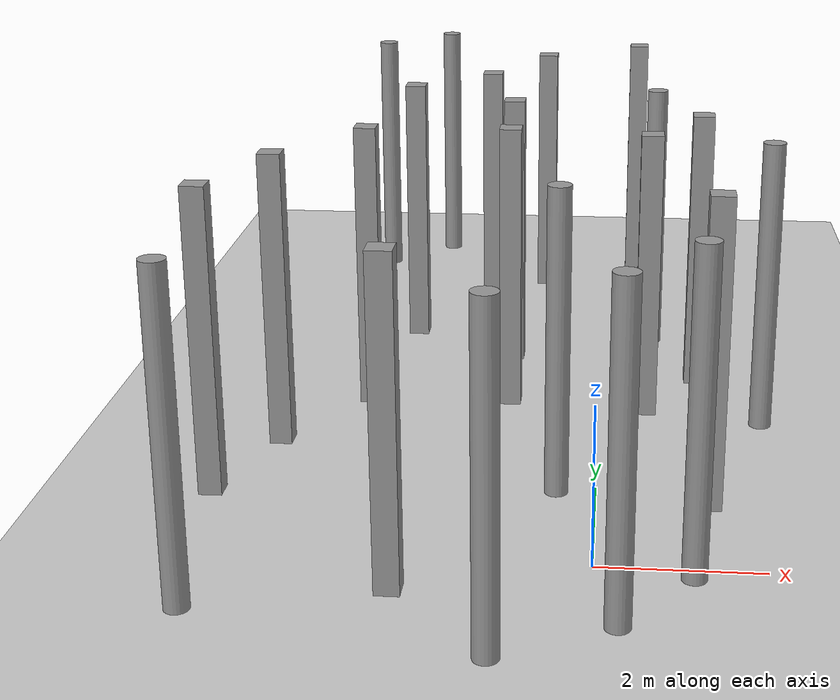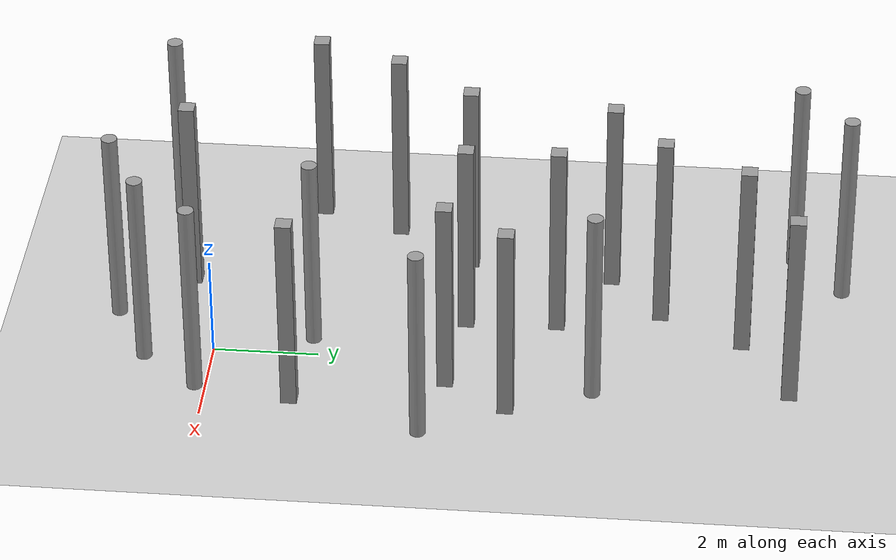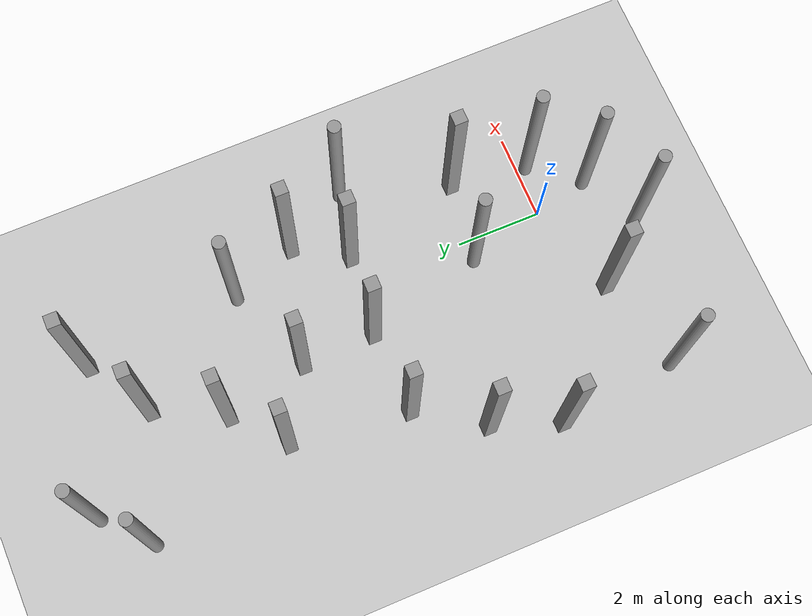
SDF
<sdf version="1.6">
 <world name="default">
  <model name="ground_plane">
   <static>1</static>
   <link name="link">
    <collision name="collision">
     <geometry><plane><normal>0 0 1</normal><size>100 100</size></plane></geometry>
    </collision>
    <visual name="visual">
     <cast_shadows>0</cast_shadows>
     <geometry><plane><normal>0 0 1</normal><size>100 100</size></plane></geometry>
     <material>
      <script><uri>file://media/materials/scripts/gazebo.material</uri><name>Gazebo/Gray</name></script>
     </material>
    </visual>
   </link>
  </model>
  <model name="unit_box">
   <link name="link">
    <inertial>
     <mass>1000</mass>
     <inertia><ixx>166.667</ixx><ixy>0</ixy><ixz>0</ixz><iyy>166.667</iyy><iyz>0</iyz><izz>166.667</izz></inertia>
    </inertial>
    <visual name="visual">
     <geometry><box><size>0.3 0.3 4</size></box></geometry>
     <material>
      <script><name>Gazebo/Grey</name><uri>file://media/materials/scripts/gazebo.material</uri></script>
      <shader type="vertex"><normal_map>__default__</normal_map></shader>
      <ambient>0.3 0.3 0.3 1</ambient>
      <diffuse>0.7 0.7 0.7 1</diffuse>
      <specular>0.01 0.01 0.01 1</specular>
      <emissive>0 0 0 1</emissive>
     </material>
    </visual>
    <collision name="collision">
     <geometry><box><size>0.3 0.3 4</size></box></geometry>
     <surface>
      <friction>
       <ode><mu>1</mu><mu2>1</mu2><fdir1>0 0 0</fdir1><slip1>0</slip1><slip2>0</slip2></ode>
       <torsional>
        <coefficient>1</coefficient>
        <patch_radius>0</patch_radius>
        <surface_radius>0</surface_radius>
        <use_patch_radius>1</use_patch_radius>
        <ode><slip>0</slip></ode>
       </torsional>
      </friction>
      <bounce><restitution_coefficient>0</restitution_coefficient><threshold>1e+06</threshold></bounce>
      <contact>
       <collide_without_contact>0</collide_without_contact>
       <collide_without_contact_bitmask>1</collide_without_contact_bitmask>
       <collide_bitmask>1</collide_bitmask>
       <ode>
        <soft_cfm>0</soft_cfm>
        <soft_erp>0.2</soft_erp>
        <kp>1e+13</kp>
        <kd>1</kd>
        <max_vel>0.01</max_vel>
        <min_depth>0</min_depth>
       </ode>
       <bullet>
        <split_impulse>1</split_impulse>
        <split_impulse_penetration_threshold>-0.01</split_impulse_penetration_threshold>
        <soft_cfm>0</soft_cfm>
        <soft_erp>0.2</soft_erp>
        <kp>1e+13</kp>
        <kd>1</kd>
       </bullet>
      </contact>
     </surface>
    </collision>
   </link>
   <static>0</static>
   <pose>-1.26727 4.71523 2 -1e-06 1e-06 -0.004556</pose>
  </model>
  <model name="unit_box_clone">
   <link name="link">
    <inertial>
     <mass>1000</mass>
     <inertia><ixx>166.667</ixx><ixy>0</ixy><ixz>0</ixz><iyy>166.667</iyy><iyz>0</iyz><izz>166.667</izz></inertia>
    </inertial>
    <visual name="visual">
     <geometry><box><size>0.3 0.3 4</size></box></geometry>
     <material>
      <script><name>Gazebo/Grey</name><uri>file://media/materials/scripts/gazebo.material</uri></script>
      <shader type="vertex"><normal_map>__default__</normal_map></shader>
      <ambient>0.3 0.3 0.3 1</ambient>
      <diffuse>0.7 0.7 0.7 1</diffuse>
      <specular>0.01 0.01 0.01 1</specular>
      <emissive>0 0 0 1</emissive>
     </material>
    </visual>
    <collision name="collision">
     <geometry><box><size>0.3 0.3 4</size></box></geometry>
     <surface>
      <friction>
       <ode><mu>1</mu><mu2>1</mu2><fdir1>0 0 0</fdir1><slip1>0</slip1><slip2>0</slip2></ode>
       <torsional>
        <coefficient>1</coefficient>
        <patch_radius>0</patch_radius>
        <surface_radius>0</surface_radius>
        <use_patch_radius>1</use_patch_radius>
        <ode><slip>0</slip></ode>
       </torsional>
      </friction>
      <bounce><restitution_coefficient>0</restitution_coefficient><threshold>1e+06</threshold></bounce>
      <contact>
       <collide_without_contact>0</collide_without_contact>
       <collide_without_contact_bitmask>1</collide_without_contact_bitmask>
       <collide_bitmask>1</collide_bitmask>
       <ode>
        <soft_cfm>0</soft_cfm>
        <soft_erp>0.2</soft_erp>
        <kp>1e+13</kp>
        <kd>1</kd>
        <max_vel>0.01</max_vel>
        <min_depth>0</min_depth>
       </ode>
       <bullet>
        <split_impulse>1</split_impulse>
        <split_impulse_penetration_threshold>-0.01</split_impulse_penetration_threshold>
        <soft_cfm>0</soft_cfm>
        <soft_erp>0.2</soft_erp>
        <kp>1e+13</kp>
        <kd>1</kd>
       </bullet>
      </contact>
     </surface>
    </collision>
   </link>
   <static>0</static>
   <pose>-2.25018 -0.681045 2 -9e-06 8e-06 -0.007469</pose>
  </model>
  <model name="unit_box_clone_1">
   <link name="link">
    <inertial>
     <mass>1000</mass>
     <inertia><ixx>166.667</ixx><ixy>0</ixy><ixz>0</ixz><iyy>166.667</iyy><iyz>0</iyz><izz>166.667</izz></inertia>
    </inertial>
    <visual name="visual">
     <geometry><box><size>0.3 0.3 4</size></box></geometry>
     <material>
      <script><name>Gazebo/Grey</name><uri>file://media/materials/scripts/gazebo.material</uri></script>
      <shader type="vertex"><normal_map>__default__</normal_map></shader>
      <ambient>0.3 0.3 0.3 1</ambient>
      <diffuse>0.7 0.7 0.7 1</diffuse>
      <specular>0.01 0.01 0.01 1</specular>
      <emissive>0 0 0 1</emissive>
     </material>
    </visual>
    <collision name="collision">
     <geometry><box><size>0.3 0.3 4</size></box></geometry>
     <surface>
      <friction>
       <ode><mu>1</mu><mu2>1</mu2><fdir1>0 0 0</fdir1><slip1>0</slip1><slip2>0</slip2></ode>
       <torsional>
        <coefficient>1</coefficient>
        <patch_radius>0</patch_radius>
        <surface_radius>0</surface_radius>
        <use_patch_radius>1</use_patch_radius>
        <ode><slip>0</slip></ode>
       </torsional>
      </friction>
      <bounce><restitution_coefficient>0</restitution_coefficient><threshold>1e+06</threshold></bounce>
      <contact>
       <collide_without_contact>0</collide_without_contact>
       <collide_without_contact_bitmask>1</collide_without_contact_bitmask>
       <collide_bitmask>1</collide_bitmask>
       <ode>
        <soft_cfm>0</soft_cfm>
        <soft_erp>0.2</soft_erp>
        <kp>1e+13</kp>
        <kd>1</kd>
        <max_vel>0.01</max_vel>
        <min_depth>0</min_depth>
       </ode>
       <bullet>
        <split_impulse>1</split_impulse>
        <split_impulse_penetration_threshold>-0.01</split_impulse_penetration_threshold>
        <soft_cfm>0</soft_cfm>
        <soft_erp>0.2</soft_erp>
        <kp>1e+13</kp>
        <kd>1</kd>
       </bullet>
      </contact>
     </surface>
    </collision>
   </link>
   <static>0</static>
   <pose>-2.89921 7.41397 2 1e-06 -1e-06 -0.001788</pose>
  </model>
  <model name="unit_box_clone_19">
   <link name="link">
    <inertial>
     <mass>1000</mass>
     <inertia><ixx>166.667</ixx><ixy>0</ixy><ixz>0</ixz><iyy>166.667</iyy><iyz>0</iyz><izz>166.667</izz></inertia>
    </inertial>
    <visual name="visual">
     <geometry><box><size>0.3 0.3 4</size></box></geometry>
     <material>
      <script><name>Gazebo/Grey</name><uri>file://media/materials/scripts/gazebo.material</uri></script>
      <shader type="vertex"><normal_map>__default__</normal_map></shader>
      <ambient>0.3 0.3 0.3 1</ambient>
      <diffuse>0.7 0.7 0.7 1</diffuse>
      <specular>0.01 0.01 0.01 1</specular>
      <emissive>0 0 0 1</emissive>
     </material>
    </visual>
    <collision name="collision">
     <geometry><box><size>0.3 0.3 4</size></box></geometry>
     <surface>
      <friction>
       <ode><mu>1</mu><mu2>1</mu2><fdir1>0 0 0</fdir1><slip1>0</slip1><slip2>0</slip2></ode>
       <torsional>
        <coefficient>1</coefficient>
        <patch_radius>0</patch_radius>
        <surface_radius>0</surface_radius>
        <use_patch_radius>1</use_patch_radius>
        <ode><slip>0</slip></ode>
       </torsional>
      </friction>
      <bounce><restitution_coefficient>0</restitution_coefficient><threshold>1e+06</threshold></bounce>
      <contact>
       <collide_without_contact>0</collide_without_contact>
       <collide_without_contact_bitmask>1</collide_without_contact_bitmask>
       <collide_bitmask>1</collide_bitmask>
       <ode>
        <soft_cfm>0</soft_cfm>
        <soft_erp>0.2</soft_erp>
        <kp>1e+13</kp>
        <kd>1</kd>
        <max_vel>0.01</max_vel>
        <min_depth>0</min_depth>
       </ode>
       <bullet>
        <split_impulse>1</split_impulse>
        <split_impulse_penetration_threshold>-0.01</split_impulse_penetration_threshold>
        <soft_cfm>0</soft_cfm>
        <soft_erp>0.2</soft_erp>
        <kp>1e+13</kp>
        <kd>1</kd>
       </bullet>
      </contact>
     </surface>
    </collision>
   </link>
   <static>0</static>
   <pose>-1.32794 6.44932 2 -1e-06 1e-06 -0.004556</pose>
  </model>
  <model name="unit_box_clone_20">
   <link name="link">
    <inertial>
     <mass>1000</mass>
     <inertia><ixx>166.667</ixx><ixy>0</ixy><ixz>0</ixz><iyy>166.667</iyy><iyz>0</iyz><izz>166.667</izz></inertia>
    </inertial>
    <visual name="visual">
     <geometry><box><size>0.3 0.3 4</size></box></geometry>
     <material>
      <script><name>Gazebo/Grey</name><uri>file://media/materials/scripts/gazebo.material</uri></script>
      <shader type="vertex"><normal_map>__default__</normal_map></shader>
      <ambient>0.3 0.3 0.3 1</ambient>
      <diffuse>0.7 0.7 0.7 1</diffuse>
      <specular>0.01 0.01 0.01 1</specular>
      <emissive>0 0 0 1</emissive>
     </material>
    </visual>
    <collision name="collision">
     <geometry><box><size>0.3 0.3 4</size></box></geometry>
     <surface>
      <friction>
       <ode><mu>1</mu><mu2>1</mu2><fdir1>0 0 0</fdir1><slip1>0</slip1><slip2>0</slip2></ode>
       <torsional>
        <coefficient>1</coefficient>
        <patch_radius>0</patch_radius>
        <surface_radius>0</surface_radius>
        <use_patch_radius>1</use_patch_radius>
        <ode><slip>0</slip></ode>
       </torsional>
      </friction>
      <bounce><restitution_coefficient>0</restitution_coefficient><threshold>1e+06</threshold></bounce>
      <contact>
       <collide_without_contact>0</collide_without_contact>
       <collide_without_contact_bitmask>1</collide_without_contact_bitmask>
       <collide_bitmask>1</collide_bitmask>
       <ode>
        <soft_cfm>0</soft_cfm>
        <soft_erp>0.2</soft_erp>
        <kp>1e+13</kp>
        <kd>1</kd>
        <max_vel>0.01</max_vel>
        <min_depth>0</min_depth>
       </ode>
       <bullet>
        <split_impulse>1</split_impulse>
        <split_impulse_penetration_threshold>-0.01</split_impulse_penetration_threshold>
        <soft_cfm>0</soft_cfm>
        <soft_erp>0.2</soft_erp>
        <kp>1e+13</kp>
        <kd>1</kd>
       </bullet>
      </contact>
     </surface>
    </collision>
   </link>
   <static>0</static>
   <pose>0.641904 4.48442 2 -2e-06 -0 0.001535</pose>
  </model>
  <model name="unit_box_clone_21">
   <link name="link">
    <inertial>
     <mass>1000</mass>
     <inertia><ixx>166.667</ixx><ixy>0</ixy><ixz>0</ixz><iyy>166.667</iyy><iyz>0</iyz><izz>166.667</izz></inertia>
    </inertial>
    <visual name="visual">
     <geometry><box><size>0.3 0.3 4</size></box></geometry>
     <material>
      <script><name>Gazebo/Grey</name><uri>file://media/materials/scripts/gazebo.material</uri></script>
      <shader type="vertex"><normal_map>__default__</normal_map></shader>
      <ambient>0.3 0.3 0.3 1</ambient>
      <diffuse>0.7 0.7 0.7 1</diffuse>
      <specular>0.01 0.01 0.01 1</specular>
      <emissive>0 0 0 1</emissive>
     </material>
    </visual>
    <collision name="collision">
     <geometry><box><size>0.3 0.3 4</size></box></geometry>
     <surface>
      <friction>
       <ode><mu>1</mu><mu2>1</mu2><fdir1>0 0 0</fdir1><slip1>0</slip1><slip2>0</slip2></ode>
       <torsional>
        <coefficient>1</coefficient>
        <patch_radius>0</patch_radius>
        <surface_radius>0</surface_radius>
        <use_patch_radius>1</use_patch_radius>
        <ode><slip>0</slip></ode>
       </torsional>
      </friction>
      <bounce><restitution_coefficient>0</restitution_coefficient><threshold>1e+06</threshold></bounce>
      <contact>
       <collide_without_contact>0</collide_without_contact>
       <collide_without_contact_bitmask>1</collide_without_contact_bitmask>
       <collide_bitmask>1</collide_bitmask>
       <ode>
        <soft_cfm>0</soft_cfm>
        <soft_erp>0.2</soft_erp>
        <kp>1e+13</kp>
        <kd>1</kd>
        <max_vel>0.01</max_vel>
        <min_depth>0</min_depth>
       </ode>
       <bullet>
        <split_impulse>1</split_impulse>
        <split_impulse_penetration_threshold>-0.01</split_impulse_penetration_threshold>
        <soft_cfm>0</soft_cfm>
        <soft_erp>0.2</soft_erp>
        <kp>1e+13</kp>
        <kd>1</kd>
       </bullet>
      </contact>
     </surface>
    </collision>
   </link>
   <static>0</static>
   <pose>-1.80203 8.41594 2 9e-06 -1.3e-05 -0.006869</pose>
  </model>
  <model name="unit_box_clone_22">
   <link name="link">
    <inertial>
     <mass>1000</mass>
     <inertia><ixx>166.667</ixx><ixy>0</ixy><ixz>0</ixz><iyy>166.667</iyy><iyz>0</iyz><izz>166.667</izz></inertia>
    </inertial>
    <visual name="visual">
     <geometry><box><size>0.3 0.3 4</size></box></geometry>
     <material>
      <script><name>Gazebo/Grey</name><uri>file://media/materials/scripts/gazebo.material</uri></script>
      <shader type="vertex"><normal_map>__default__</normal_map></shader>
      <ambient>0.3 0.3 0.3 1</ambient>
      <diffuse>0.7 0.7 0.7 1</diffuse>
      <specular>0.01 0.01 0.01 1</specular>
      <emissive>0 0 0 1</emissive>
     </material>
    </visual>
    <collision name="collision">
     <geometry><box><size>0.3 0.3 4</size></box></geometry>
     <surface>
      <friction>
       <ode><mu>1</mu><mu2>1</mu2><fdir1>0 0 0</fdir1><slip1>0</slip1><slip2>0</slip2></ode>
       <torsional>
        <coefficient>1</coefficient>
        <patch_radius>0</patch_radius>
        <surface_radius>0</surface_radius>
        <use_patch_radius>1</use_patch_radius>
        <ode><slip>0</slip></ode>
       </torsional>
      </friction>
      <bounce><restitution_coefficient>0</restitution_coefficient><threshold>1e+06</threshold></bounce>
      <contact>
       <collide_without_contact>0</collide_without_contact>
       <collide_without_contact_bitmask>1</collide_without_contact_bitmask>
       <collide_bitmask>1</collide_bitmask>
       <ode>
        <soft_cfm>0</soft_cfm>
        <soft_erp>0.2</soft_erp>
        <kp>1e+13</kp>
        <kd>1</kd>
        <max_vel>0.01</max_vel>
        <min_depth>0</min_depth>
       </ode>
       <bullet>
        <split_impulse>1</split_impulse>
        <split_impulse_penetration_threshold>-0.01</split_impulse_penetration_threshold>
        <soft_cfm>0</soft_cfm>
        <soft_erp>0.2</soft_erp>
        <kp>1e+13</kp>
        <kd>1</kd>
       </bullet>
      </contact>
     </surface>
    </collision>
   </link>
   <static>0</static>
   <pose>-0.999863 9.99992 2 6e-06 2e-06 -0.013394</pose>
  </model>
  <model name="unit_box_clone_26">
   <link name="link">
    <inertial>
     <mass>1000</mass>
     <inertia><ixx>166.667</ixx><ixy>0</ixy><ixz>0</ixz><iyy>166.667</iyy><iyz>0</iyz><izz>166.667</izz></inertia>
    </inertial>
    <visual name="visual">
     <geometry><box><size>0.3 0.3 4</size></box></geometry>
     <material>
      <script><name>Gazebo/Grey</name><uri>file://media/materials/scripts/gazebo.material</uri></script>
      <shader type="vertex"><normal_map>__default__</normal_map></shader>
      <ambient>0.3 0.3 0.3 1</ambient>
      <diffuse>0.7 0.7 0.7 1</diffuse>
      <specular>0.01 0.01 0.01 1</specular>
      <emissive>0 0 0 1</emissive>
     </material>
    </visual>
    <collision name="collision">
     <geometry><box><size>0.3 0.3 4</size></box></geometry>
     <surface>
      <friction>
       <ode><mu>1</mu><mu2>1</mu2><fdir1>0 0 0</fdir1><slip1>0</slip1><slip2>0</slip2></ode>
       <torsional>
        <coefficient>1</coefficient>
        <patch_radius>0</patch_radius>
        <surface_radius>0</surface_radius>
        <use_patch_radius>1</use_patch_radius>
        <ode><slip>0</slip></ode>
       </torsional>
      </friction>
      <bounce><restitution_coefficient>0</restitution_coefficient><threshold>1e+06</threshold></bounce>
      <contact>
       <collide_without_contact>0</collide_without_contact>
       <collide_without_contact_bitmask>1</collide_without_contact_bitmask>
       <collide_bitmask>1</collide_bitmask>
       <ode>
        <soft_cfm>0</soft_cfm>
        <soft_erp>0.2</soft_erp>
        <kp>1e+13</kp>
        <kd>1</kd>
        <max_vel>0.01</max_vel>
        <min_depth>0</min_depth>
       </ode>
       <bullet>
        <split_impulse>1</split_impulse>
        <split_impulse_penetration_threshold>-0.01</split_impulse_penetration_threshold>
        <soft_cfm>0</soft_cfm>
        <soft_erp>0.2</soft_erp>
        <kp>1e+13</kp>
        <kd>1</kd>
       </bullet>
      </contact>
     </surface>
    </collision>
   </link>
   <static>0</static>
   <pose>-3.24166 4.64156 2.00001 1e-06 -8.5e-05 -0.004088</pose>
  </model>
  <model name="unit_box_clone_27">
   <link name="link">
    <inertial>
     <mass>1000</mass>
     <inertia><ixx>166.667</ixx><ixy>0</ixy><ixz>0</ixz><iyy>166.667</iyy><iyz>0</iyz><izz>166.667</izz></inertia>
    </inertial>
    <visual name="visual">
     <geometry><box><size>0.3 0.3 4</size></box></geometry>
     <material>
      <script><name>Gazebo/Grey</name><uri>file://media/materials/scripts/gazebo.material</uri></script>
      <shader type="vertex"><normal_map>__default__</normal_map></shader>
      <ambient>0.3 0.3 0.3 1</ambient>
      <diffuse>0.7 0.7 0.7 1</diffuse>
      <specular>0.01 0.01 0.01 1</specular>
      <emissive>0 0 0 1</emissive>
     </material>
    </visual>
    <collision name="collision">
     <geometry><box><size>0.3 0.3 4</size></box></geometry>
     <surface>
      <friction>
       <ode><mu>1</mu><mu2>1</mu2><fdir1>0 0 0</fdir1><slip1>0</slip1><slip2>0</slip2></ode>
       <torsional>
        <coefficient>1</coefficient>
        <patch_radius>0</patch_radius>
        <surface_radius>0</surface_radius>
        <use_patch_radius>1</use_patch_radius>
        <ode><slip>0</slip></ode>
       </torsional>
      </friction>
      <bounce><restitution_coefficient>0</restitution_coefficient><threshold>1e+06</threshold></bounce>
      <contact>
       <collide_without_contact>0</collide_without_contact>
       <collide_without_contact_bitmask>1</collide_without_contact_bitmask>
       <collide_bitmask>1</collide_bitmask>
       <ode>
        <soft_cfm>0</soft_cfm>
        <soft_erp>0.2</soft_erp>
        <kp>1e+13</kp>
        <kd>1</kd>
        <max_vel>0.01</max_vel>
        <min_depth>0</min_depth>
       </ode>
       <bullet>
        <split_impulse>1</split_impulse>
        <split_impulse_penetration_threshold>-0.01</split_impulse_penetration_threshold>
        <soft_cfm>0</soft_cfm>
        <soft_erp>0.2</soft_erp>
        <kp>1e+13</kp>
        <kd>1</kd>
       </bullet>
      </contact>
     </surface>
    </collision>
   </link>
   <static>0</static>
   <pose>-4.80577 1.58862 2 5e-06 1e-05 0.006274</pose>
  </model>
  <model name="unit_cylinder_clone_3">
   <link name="link">
    <inertial>
     <mass>1000</mass>
     <inertia><ixx>145.833</ixx><ixy>0</ixy><ixz>0</ixz><iyy>145.833</iyy><iyz>0</iyz><izz>125</izz></inertia>
    </inertial>
    <visual name="visual">
     <geometry><cylinder><radius>0.15</radius><length>4</length></cylinder></geometry>
     <material>
      <script><name>Gazebo/Grey</name><uri>file://media/materials/scripts/gazebo.material</uri></script>
      <shader type="vertex"><normal_map>__default__</normal_map></shader>
      <ambient>0.3 0.3 0.3 1</ambient>
      <diffuse>0.7 0.7 0.7 1</diffuse>
      <specular>0.01 0.01 0.01 1</specular>
      <emissive>0 0 0 1</emissive>
     </material>
    </visual>
    <collision name="collision">
     <geometry><cylinder><radius>0.15</radius><length>4</length></cylinder></geometry>
     <surface>
      <friction>
       <ode><mu>1</mu><mu2>1</mu2><fdir1>0 0 0</fdir1><slip1>0</slip1><slip2>0</slip2></ode>
       <torsional>
        <coefficient>1</coefficient>
        <patch_radius>0</patch_radius>
        <surface_radius>0</surface_radius>
        <use_patch_radius>1</use_patch_radius>
        <ode><slip>0</slip></ode>
       </torsional>
      </friction>
      <bounce><restitution_coefficient>0</restitution_coefficient><threshold>1e+06</threshold></bounce>
      <contact>
       <collide_without_contact>0</collide_without_contact>
       <collide_without_contact_bitmask>1</collide_without_contact_bitmask>
       <collide_bitmask>1</collide_bitmask>
       <ode>
        <soft_cfm>0</soft_cfm>
        <soft_erp>0.2</soft_erp>
        <kp>1e+13</kp>
        <kd>1</kd>
        <max_vel>0.01</max_vel>
        <min_depth>0</min_depth>
       </ode>
       <bullet>
        <split_impulse>1</split_impulse>
        <split_impulse_penetration_threshold>-0.01</split_impulse_penetration_threshold>
        <soft_cfm>0</soft_cfm>
        <soft_erp>0.2</soft_erp>
        <kp>1e+13</kp>
        <kd>1</kd>
       </bullet>
      </contact>
     </surface>
    </collision>
   </link>
   <static>0</static>
   <pose>0.763384 7.25593 1.99998 -2e-06 1e-06 -0.167033</pose>
  </model>
  <model name="unit_cylinder_clone_1_clone_8">
   <link name="link">
    <inertial>
     <mass>1000</mass>
     <inertia><ixx>145.833</ixx><ixy>0</ixy><ixz>0</ixz><iyy>145.833</iyy><iyz>0</iyz><izz>125</izz></inertia>
    </inertial>
    <visual name="visual">
     <geometry><cylinder><radius>0.15</radius><length>4</length></cylinder></geometry>
     <material>
      <script><name>Gazebo/Grey</name><uri>file://media/materials/scripts/gazebo.material</uri></script>
      <shader type="vertex"><normal_map>__default__</normal_map></shader>
      <ambient>0.3 0.3 0.3 1</ambient>
      <diffuse>0.7 0.7 0.7 1</diffuse>
      <specular>0.01 0.01 0.01 1</specular>
      <emissive>0 0 0 1</emissive>
     </material>
    </visual>
    <collision name="collision">
     <geometry><cylinder><radius>0.15</radius><length>4</length></cylinder></geometry>
     <surface>
      <friction>
       <ode><mu>1</mu><mu2>1</mu2><fdir1>0 0 0</fdir1><slip1>0</slip1><slip2>0</slip2></ode>
       <torsional>
        <coefficient>1</coefficient>
        <patch_radius>0</patch_radius>
        <surface_radius>0</surface_radius>
        <use_patch_radius>1</use_patch_radius>
        <ode><slip>0</slip></ode>
       </torsional>
      </friction>
      <bounce><restitution_coefficient>0</restitution_coefficient><threshold>1e+06</threshold></bounce>
      <contact>
       <collide_without_contact>0</collide_without_contact>
       <collide_without_contact_bitmask>1</collide_without_contact_bitmask>
       <collide_bitmask>1</collide_bitmask>
       <ode>
        <soft_cfm>0</soft_cfm>
        <soft_erp>0.2</soft_erp>
        <kp>1e+13</kp>
        <kd>1</kd>
        <max_vel>0.01</max_vel>
        <min_depth>0</min_depth>
       </ode>
       <bullet>
        <split_impulse>1</split_impulse>
        <split_impulse_penetration_threshold>-0.01</split_impulse_penetration_threshold>
        <soft_cfm>0</soft_cfm>
        <soft_erp>0.2</soft_erp>
        <kp>1e+13</kp>
        <kd>1</kd>
       </bullet>
      </contact>
     </surface>
    </collision>
   </link>
   <static>0</static>
   <pose>0.294782 -1.28433 1.99995 -0.000273 3e-06 -0.784263</pose>
  </model>
  <model name="unit_cylinder_clone_1_clone_11">
   <link name="link">
    <inertial>
     <mass>1000</mass>
     <inertia><ixx>145.833</ixx><ixy>0</ixy><ixz>0</ixz><iyy>145.833</iyy><iyz>0</iyz><izz>125</izz></inertia>
    </inertial>
    <visual name="visual">
     <geometry><cylinder><radius>0.15</radius><length>4</length></cylinder></geometry>
     <material>
      <script><name>Gazebo/Grey</name><uri>file://media/materials/scripts/gazebo.material</uri></script>
      <shader type="vertex"><normal_map>__default__</normal_map></shader>
      <ambient>0.3 0.3 0.3 1</ambient>
      <diffuse>0.7 0.7 0.7 1</diffuse>
      <specular>0.01 0.01 0.01 1</specular>
      <emissive>0 0 0 1</emissive>
     </material>
    </visual>
    <collision name="collision">
     <geometry><cylinder><radius>0.15</radius><length>4</length></cylinder></geometry>
     <surface>
      <friction>
       <ode><mu>1</mu><mu2>1</mu2><fdir1>0 0 0</fdir1><slip1>0</slip1><slip2>0</slip2></ode>
       <torsional>
        <coefficient>1</coefficient>
        <patch_radius>0</patch_radius>
        <surface_radius>0</surface_radius>
        <use_patch_radius>1</use_patch_radius>
        <ode><slip>0</slip></ode>
       </torsional>
      </friction>
      <bounce><restitution_coefficient>0</restitution_coefficient><threshold>1e+06</threshold></bounce>
      <contact>
       <collide_without_contact>0</collide_without_contact>
       <collide_without_contact_bitmask>1</collide_without_contact_bitmask>
       <collide_bitmask>1</collide_bitmask>
       <ode>
        <soft_cfm>0</soft_cfm>
        <soft_erp>0.2</soft_erp>
        <kp>1e+13</kp>
        <kd>1</kd>
        <max_vel>0.01</max_vel>
        <min_depth>0</min_depth>
       </ode>
       <bullet>
        <split_impulse>1</split_impulse>
        <split_impulse_penetration_threshold>-0.01</split_impulse_penetration_threshold>
        <soft_cfm>0</soft_cfm>
        <soft_erp>0.2</soft_erp>
        <kp>1e+13</kp>
        <kd>1</kd>
       </bullet>
      </contact>
     </surface>
    </collision>
   </link>
   <static>0</static>
   <pose>-4.48643 -1.24733 1.99995 -0.000273 3e-06 -0.783145</pose>
  </model>
  <model name="unit_cylinder_clone_1_clone_33">
   <link name="link">
    <inertial>
     <mass>1000</mass>
     <inertia><ixx>145.833</ixx><ixy>0</ixy><ixz>0</ixz><iyy>145.833</iyy><iyz>0</iyz><izz>125</izz></inertia>
    </inertial>
    <visual name="visual">
     <geometry><cylinder><radius>0.15</radius><length>4</length></cylinder></geometry>
     <material>
      <script><name>Gazebo/Grey</name><uri>file://media/materials/scripts/gazebo.material</uri></script>
      <shader type="vertex"><normal_map>__default__</normal_map></shader>
      <ambient>0.3 0.3 0.3 1</ambient>
      <diffuse>0.7 0.7 0.7 1</diffuse>
      <specular>0.01 0.01 0.01 1</specular>
      <emissive>0 0 0 1</emissive>
     </material>
    </visual>
    <collision name="collision">
     <geometry><cylinder><radius>0.15</radius><length>4</length></cylinder></geometry>
     <surface>
      <friction>
       <ode><mu>1</mu><mu2>1</mu2><fdir1>0 0 0</fdir1><slip1>0</slip1><slip2>0</slip2></ode>
       <torsional>
        <coefficient>1</coefficient>
        <patch_radius>0</patch_radius>
        <surface_radius>0</surface_radius>
        <use_patch_radius>1</use_patch_radius>
        <ode><slip>0</slip></ode>
       </torsional>
      </friction>
      <bounce><restitution_coefficient>0</restitution_coefficient><threshold>1e+06</threshold></bounce>
      <contact>
       <collide_without_contact>0</collide_without_contact>
       <collide_without_contact_bitmask>1</collide_without_contact_bitmask>
       <collide_bitmask>1</collide_bitmask>
       <ode>
        <soft_cfm>0</soft_cfm>
        <soft_erp>0.2</soft_erp>
        <kp>1e+13</kp>
        <kd>1</kd>
        <max_vel>0.01</max_vel>
        <min_depth>0</min_depth>
       </ode>
       <bullet>
        <split_impulse>1</split_impulse>
        <split_impulse_penetration_threshold>-0.01</split_impulse_penetration_threshold>
        <soft_cfm>0</soft_cfm>
        <soft_erp>0.2</soft_erp>
        <kp>1e+13</kp>
        <kd>1</kd>
       </bullet>
      </contact>
     </surface>
    </collision>
   </link>
   <static>0</static>
   <pose>-1.0552 -1.9718 1.99995 -0.000273 4e-06 -0.777211</pose>
  </model>
  <model name="unit_cylinder_clone_1_clone_7_clone">
   <link name="link">
    <inertial>
     <mass>1000</mass>
     <inertia><ixx>145.833</ixx><ixy>0</ixy><ixz>0</ixz><iyy>145.833</iyy><iyz>0</iyz><izz>125</izz></inertia>
    </inertial>
    <visual name="visual">
     <geometry><cylinder><radius>0.15</radius><length>4</length></cylinder></geometry>
     <material>
      <script><name>Gazebo/Grey</name><uri>file://media/materials/scripts/gazebo.material</uri></script>
      <shader type="vertex"><normal_map>__default__</normal_map></shader>
      <ambient>0.3 0.3 0.3 1</ambient>
      <diffuse>0.7 0.7 0.7 1</diffuse>
      <specular>0.01 0.01 0.01 1</specular>
      <emissive>0 0 0 1</emissive>
     </material>
    </visual>
    <collision name="collision">
     <geometry><cylinder><radius>0.15</radius><length>4</length></cylinder></geometry>
     <surface>
      <friction>
       <ode><mu>1</mu><mu2>1</mu2><fdir1>0 0 0</fdir1><slip1>0</slip1><slip2>0</slip2></ode>
       <torsional>
        <coefficient>1</coefficient>
        <patch_radius>0</patch_radius>
        <surface_radius>0</surface_radius>
        <use_patch_radius>1</use_patch_radius>
        <ode><slip>0</slip></ode>
       </torsional>
      </friction>
      <bounce><restitution_coefficient>0</restitution_coefficient><threshold>1e+06</threshold></bounce>
      <contact>
       <collide_without_contact>0</collide_without_contact>
       <collide_without_contact_bitmask>1</collide_without_contact_bitmask>
       <collide_bitmask>1</collide_bitmask>
       <ode>
        <soft_cfm>0</soft_cfm>
        <soft_erp>0.2</soft_erp>
        <kp>1e+13</kp>
        <kd>1</kd>
        <max_vel>0.01</max_vel>
        <min_depth>0</min_depth>
       </ode>
       <bullet>
        <split_impulse>1</split_impulse>
        <split_impulse_penetration_threshold>-0.01</split_impulse_penetration_threshold>
        <soft_cfm>0</soft_cfm>
        <soft_erp>0.2</soft_erp>
        <kp>1e+13</kp>
        <kd>1</kd>
       </bullet>
      </contact>
     </surface>
    </collision>
   </link>
   <static>0</static>
   <pose>2.21538 4.11821 1.99995 -0.000273 2e-06 -0.785195</pose>
  </model>
  <model name="unit_cylinder_clone_1_clone_7_clone_2">
   <link name="link">
    <inertial>
     <mass>1000</mass>
     <inertia><ixx>145.833</ixx><ixy>0</ixy><ixz>0</ixz><iyy>145.833</iyy><iyz>0</iyz><izz>125</izz></inertia>
    </inertial>
    <visual name="visual">
     <geometry><cylinder><radius>0.15</radius><length>4</length></cylinder></geometry>
     <material>
      <script><name>Gazebo/Grey</name><uri>file://media/materials/scripts/gazebo.material</uri></script>
      <shader type="vertex"><normal_map>__default__</normal_map></shader>
      <ambient>0.3 0.3 0.3 1</ambient>
      <diffuse>0.7 0.7 0.7 1</diffuse>
      <specular>0.01 0.01 0.01 1</specular>
      <emissive>0 0 0 1</emissive>
     </material>
    </visual>
    <collision name="collision">
     <geometry><cylinder><radius>0.15</radius><length>4</length></cylinder></geometry>
     <surface>
      <friction>
       <ode><mu>1</mu><mu2>1</mu2><fdir1>0 0 0</fdir1><slip1>0</slip1><slip2>0</slip2></ode>
       <torsional>
        <coefficient>1</coefficient>
        <patch_radius>0</patch_radius>
        <surface_radius>0</surface_radius>
        <use_patch_radius>1</use_patch_radius>
        <ode><slip>0</slip></ode>
       </torsional>
      </friction>
      <bounce><restitution_coefficient>0</restitution_coefficient><threshold>1e+06</threshold></bounce>
      <contact>
       <collide_without_contact>0</collide_without_contact>
       <collide_without_contact_bitmask>1</collide_without_contact_bitmask>
       <collide_bitmask>1</collide_bitmask>
       <ode>
        <soft_cfm>0</soft_cfm>
        <soft_erp>0.2</soft_erp>
        <kp>1e+13</kp>
        <kd>1</kd>
        <max_vel>0.01</max_vel>
        <min_depth>0</min_depth>
       </ode>
       <bullet>
        <split_impulse>1</split_impulse>
        <split_impulse_penetration_threshold>-0.01</split_impulse_penetration_threshold>
        <soft_cfm>0</soft_cfm>
        <soft_erp>0.2</soft_erp>
        <kp>1e+13</kp>
        <kd>1</kd>
       </bullet>
      </contact>
     </surface>
    </collision>
   </link>
   <static>0</static>
   <pose>-2.8288 11.8758 1.99995 -0.000273 2e-06 -0.788003</pose>
  </model>
  <model name="unit_cylinder_clone_1_clone_7_clone_7">
   <link name="link">
    <inertial>
     <mass>1000</mass>
     <inertia><ixx>145.833</ixx><ixy>0</ixy><ixz>0</ixz><iyy>145.833</iyy><iyz>0</iyz><izz>125</izz></inertia>
    </inertial>
    <visual name="visual">
     <geometry><cylinder><radius>0.15</radius><length>4</length></cylinder></geometry>
     <material>
      <script><name>Gazebo/Grey</name><uri>file://media/materials/scripts/gazebo.material</uri></script>
      <shader type="vertex"><normal_map>__default__</normal_map></shader>
      <ambient>0.3 0.3 0.3 1</ambient>
      <diffuse>0.7 0.7 0.7 1</diffuse>
      <specular>0.01 0.01 0.01 1</specular>
      <emissive>0 0 0 1</emissive>
     </material>
    </visual>
    <collision name="collision">
     <geometry><cylinder><radius>0.15</radius><length>4</length></cylinder></geometry>
     <surface>
      <friction>
       <ode><mu>1</mu><mu2>1</mu2><fdir1>0 0 0</fdir1><slip1>0</slip1><slip2>0</slip2></ode>
       <torsional>
        <coefficient>1</coefficient>
        <patch_radius>0</patch_radius>
        <surface_radius>0</surface_radius>
        <use_patch_radius>1</use_patch_radius>
        <ode><slip>0</slip></ode>
       </torsional>
      </friction>
      <bounce><restitution_coefficient>0</restitution_coefficient><threshold>1e+06</threshold></bounce>
      <contact>
       <collide_without_contact>0</collide_without_contact>
       <collide_without_contact_bitmask>1</collide_without_contact_bitmask>
       <collide_bitmask>1</collide_bitmask>
       <ode>
        <soft_cfm>0</soft_cfm>
        <soft_erp>0.2</soft_erp>
        <kp>1e+13</kp>
        <kd>1</kd>
        <max_vel>0.01</max_vel>
        <min_depth>0</min_depth>
       </ode>
       <bullet>
        <split_impulse>1</split_impulse>
        <split_impulse_penetration_threshold>-0.01</split_impulse_penetration_threshold>
        <soft_cfm>0</soft_cfm>
        <soft_erp>0.2</soft_erp>
        <kp>1e+13</kp>
        <kd>1</kd>
       </bullet>
      </contact>
     </surface>
    </collision>
   </link>
   <static>0</static>
   <pose>-3.82599 10.9303 1.99995 -0.000273 2e-06 -0.788003</pose>
  </model>
  <model name="unit_cylinder_clone_1_clone_7_clone_10">
   <link name="link">
    <inertial>
     <mass>1000</mass>
     <inertia><ixx>145.833</ixx><ixy>0</ixy><ixz>0</ixz><iyy>145.833</iyy><iyz>0</iyz><izz>125</izz></inertia>
    </inertial>
    <visual name="visual">
     <geometry><cylinder><radius>0.15</radius><length>4</length></cylinder></geometry>
     <material>
      <script><name>Gazebo/Grey</name><uri>file://media/materials/scripts/gazebo.material</uri></script>
      <shader type="vertex"><normal_map>__default__</normal_map></shader>
      <ambient>0.3 0.3 0.3 1</ambient>
      <diffuse>0.7 0.7 0.7 1</diffuse>
      <specular>0.01 0.01 0.01 1</specular>
      <emissive>0 0 0 1</emissive>
     </material>
    </visual>
    <collision name="collision">
     <geometry><cylinder><radius>0.15</radius><length>4</length></cylinder></geometry>
     <surface>
      <friction>
       <ode><mu>1</mu><mu2>1</mu2><fdir1>0 0 0</fdir1><slip1>0</slip1><slip2>0</slip2></ode>
       <torsional>
        <coefficient>1</coefficient>
        <patch_radius>0</patch_radius>
        <surface_radius>0</surface_radius>
        <use_patch_radius>1</use_patch_radius>
        <ode><slip>0</slip></ode>
       </torsional>
      </friction>
      <bounce><restitution_coefficient>0</restitution_coefficient><threshold>1e+06</threshold></bounce>
      <contact>
       <collide_without_contact>0</collide_without_contact>
       <collide_without_contact_bitmask>1</collide_without_contact_bitmask>
       <collide_bitmask>1</collide_bitmask>
       <ode>
        <soft_cfm>0</soft_cfm>
        <soft_erp>0.2</soft_erp>
        <kp>1e+13</kp>
        <kd>1</kd>
        <max_vel>0.01</max_vel>
        <min_depth>0</min_depth>
       </ode>
       <bullet>
        <split_impulse>1</split_impulse>
        <split_impulse_penetration_threshold>-0.01</split_impulse_penetration_threshold>
        <soft_cfm>0</soft_cfm>
        <soft_erp>0.2</soft_erp>
        <kp>1e+13</kp>
        <kd>1</kd>
       </bullet>
      </contact>
     </surface>
    </collision>
   </link>
   <static>0</static>
   <pose>-0.493535 1.8592 1.99995 -0.000273 4e-06 -0.779035</pose>
  </model>
  <model name="unit_cylinder_clone_7">
   <link name="link">
    <inertial>
     <mass>1000</mass>
     <inertia><ixx>145.833</ixx><ixy>0</ixy><ixz>0</ixz><iyy>145.833</iyy><iyz>0</iyz><izz>125</izz></inertia>
    </inertial>
    <visual name="visual">
     <geometry><cylinder><radius>0.15</radius><length>4</length></cylinder></geometry>
     <material>
      <script><name>Gazebo/Grey</name><uri>file://media/materials/scripts/gazebo.material</uri></script>
      <shader type="vertex"><normal_map>__default__</normal_map></shader>
      <ambient>0.3 0.3 0.3 1</ambient>
      <diffuse>0.7 0.7 0.7 1</diffuse>
      <specular>0.01 0.01 0.01 1</specular>
      <emissive>0 0 0 1</emissive>
     </material>
    </visual>
    <collision name="collision">
     <geometry><cylinder><radius>0.15</radius><length>4</length></cylinder></geometry>
     <surface>
      <friction>
       <ode><mu>1</mu><mu2>1</mu2><fdir1>0 0 0</fdir1><slip1>0</slip1><slip2>0</slip2></ode>
       <torsional>
        <coefficient>1</coefficient>
        <patch_radius>0</patch_radius>
        <surface_radius>0</surface_radius>
        <use_patch_radius>1</use_patch_radius>
        <ode><slip>0</slip></ode>
       </torsional>
      </friction>
      <bounce><restitution_coefficient>0</restitution_coefficient><threshold>1e+06</threshold></bounce>
      <contact>
       <collide_without_contact>0</collide_without_contact>
       <collide_without_contact_bitmask>1</collide_without_contact_bitmask>
       <collide_bitmask>1</collide_bitmask>
       <ode>
        <soft_cfm>0</soft_cfm>
        <soft_erp>0.2</soft_erp>
        <kp>1e+13</kp>
        <kd>1</kd>
        <max_vel>0.01</max_vel>
        <min_depth>0</min_depth>
       </ode>
       <bullet>
        <split_impulse>1</split_impulse>
        <split_impulse_penetration_threshold>-0.01</split_impulse_penetration_threshold>
        <soft_cfm>0</soft_cfm>
        <soft_erp>0.2</soft_erp>
        <kp>1e+13</kp>
        <kd>1</kd>
       </bullet>
      </contact>
     </surface>
    </collision>
   </link>
   <static>0</static>
   <pose>1.14844 -0.198281 1.99998 -1e-06 -1e-06 -0.171361</pose>
  </model>
  <model name="unit_box_clone_27_clone">
   <link name="link">
    <inertial>
     <mass>1000</mass>
     <inertia><ixx>166.667</ixx><ixy>0</ixy><ixz>0</ixz><iyy>166.667</iyy><iyz>0</iyz><izz>166.667</izz></inertia>
    </inertial>
    <visual name="visual">
     <geometry><box><size>0.3 0.3 4</size></box></geometry>
     <material>
      <script><name>Gazebo/Grey</name><uri>file://media/materials/scripts/gazebo.material</uri></script>
      <shader type="vertex"><normal_map>__default__</normal_map></shader>
      <ambient>0.3 0.3 0.3 1</ambient>
      <diffuse>0.7 0.7 0.7 1</diffuse>
      <specular>0.01 0.01 0.01 1</specular>
      <emissive>0 0 0 1</emissive>
     </material>
    </visual>
    <collision name="collision">
     <geometry><box><size>0.3 0.3 4</size></box></geometry>
     <surface>
      <friction>
       <ode><mu>1</mu><mu2>1</mu2><fdir1>0 0 0</fdir1><slip1>0</slip1><slip2>0</slip2></ode>
       <torsional>
        <coefficient>1</coefficient>
        <patch_radius>0</patch_radius>
        <surface_radius>0</surface_radius>
        <use_patch_radius>1</use_patch_radius>
        <ode><slip>0</slip></ode>
       </torsional>
      </friction>
      <bounce><restitution_coefficient>0</restitution_coefficient><threshold>1e+06</threshold></bounce>
      <contact>
       <collide_without_contact>0</collide_without_contact>
       <collide_without_contact_bitmask>1</collide_without_contact_bitmask>
       <collide_bitmask>1</collide_bitmask>
       <ode>
        <soft_cfm>0</soft_cfm>
        <soft_erp>0.2</soft_erp>
        <kp>1e+13</kp>
        <kd>1</kd>
        <max_vel>0.01</max_vel>
        <min_depth>0</min_depth>
       </ode>
       <bullet>
        <split_impulse>1</split_impulse>
        <split_impulse_penetration_threshold>-0.01</split_impulse_penetration_threshold>
        <soft_cfm>0</soft_cfm>
        <soft_erp>0.2</soft_erp>
        <kp>1e+13</kp>
        <kd>1</kd>
       </bullet>
      </contact>
     </surface>
    </collision>
   </link>
   <static>0</static>
   <pose>-4.23565 3.15928 2 -1e-06 1e-06 -0.005768</pose>
  </model>
  <model name="unit_box_clone_27_clone_0">
   <link name="link">
    <inertial>
     <mass>1000</mass>
     <inertia><ixx>166.667</ixx><ixy>0</ixy><ixz>0</ixz><iyy>166.667</iyy><iyz>0</iyz><izz>166.667</izz></inertia>
    </inertial>
    <visual name="visual">
     <geometry><box><size>0.3 0.3 4</size></box></geometry>
     <material>
      <script><name>Gazebo/Grey</name><uri>file://media/materials/scripts/gazebo.material</uri></script>
      <shader type="vertex"><normal_map>__default__</normal_map></shader>
      <ambient>0.3 0.3 0.3 1</ambient>
      <diffuse>0.7 0.7 0.7 1</diffuse>
      <specular>0.01 0.01 0.01 1</specular>
      <emissive>0 0 0 1</emissive>
     </material>
    </visual>
    <collision name="collision">
     <geometry><box><size>0.3 0.3 4</size></box></geometry>
     <surface>
      <friction>
       <ode><mu>1</mu><mu2>1</mu2><fdir1>0 0 0</fdir1><slip1>0</slip1><slip2>0</slip2></ode>
       <torsional>
        <coefficient>1</coefficient>
        <patch_radius>0</patch_radius>
        <surface_radius>0</surface_radius>
        <use_patch_radius>1</use_patch_radius>
        <ode><slip>0</slip></ode>
       </torsional>
      </friction>
      <bounce><restitution_coefficient>0</restitution_coefficient><threshold>1e+06</threshold></bounce>
      <contact>
       <collide_without_contact>0</collide_without_contact>
       <collide_without_contact_bitmask>1</collide_without_contact_bitmask>
       <collide_bitmask>1</collide_bitmask>
       <ode>
        <soft_cfm>0</soft_cfm>
        <soft_erp>0.2</soft_erp>
        <kp>1e+13</kp>
        <kd>1</kd>
        <max_vel>0.01</max_vel>
        <min_depth>0</min_depth>
       </ode>
       <bullet>
        <split_impulse>1</split_impulse>
        <split_impulse_penetration_threshold>-0.01</split_impulse_penetration_threshold>
        <soft_cfm>0</soft_cfm>
        <soft_erp>0.2</soft_erp>
        <kp>1e+13</kp>
        <kd>1</kd>
       </bullet>
      </contact>
     </surface>
    </collision>
   </link>
   <static>0</static>
   <pose>1.37488 5.67873 2.00001 5.2e-05 1.5e-05 -0.006634</pose>
  </model>
  <model name="unit_box_clone_27_clone_2">
   <link name="link">
    <inertial>
     <mass>1000</mass>
     <inertia><ixx>166.667</ixx><ixy>0</ixy><ixz>0</ixz><iyy>166.667</iyy><iyz>0</iyz><izz>166.667</izz></inertia>
    </inertial>
    <visual name="visual">
     <geometry><box><size>0.3 0.3 4</size></box></geometry>
     <material>
      <script><name>Gazebo/Grey</name><uri>file://media/materials/scripts/gazebo.material</uri></script>
      <shader type="vertex"><normal_map>__default__</normal_map></shader>
      <ambient>0.3 0.3 0.3 1</ambient>
      <diffuse>0.7 0.7 0.7 1</diffuse>
      <specular>0.01 0.01 0.01 1</specular>
      <emissive>0 0 0 1</emissive>
     </material>
    </visual>
    <collision name="collision">
     <geometry><box><size>0.3 0.3 4</size></box></geometry>
     <surface>
      <friction>
       <ode><mu>1</mu><mu2>1</mu2><fdir1>0 0 0</fdir1><slip1>0</slip1><slip2>0</slip2></ode>
       <torsional>
        <coefficient>1</coefficient>
        <patch_radius>0</patch_radius>
        <surface_radius>0</surface_radius>
        <use_patch_radius>1</use_patch_radius>
        <ode><slip>0</slip></ode>
       </torsional>
      </friction>
      <bounce><restitution_coefficient>0</restitution_coefficient><threshold>1e+06</threshold></bounce>
      <contact>
       <collide_without_contact>0</collide_without_contact>
       <collide_without_contact_bitmask>1</collide_without_contact_bitmask>
       <collide_bitmask>1</collide_bitmask>
       <ode>
        <soft_cfm>0</soft_cfm>
        <soft_erp>0.2</soft_erp>
        <kp>1e+13</kp>
        <kd>1</kd>
        <max_vel>0.01</max_vel>
        <min_depth>0</min_depth>
       </ode>
       <bullet>
        <split_impulse>1</split_impulse>
        <split_impulse_penetration_threshold>-0.01</split_impulse_penetration_threshold>
        <soft_cfm>0</soft_cfm>
        <soft_erp>0.2</soft_erp>
        <kp>1e+13</kp>
        <kd>1</kd>
       </bullet>
      </contact>
     </surface>
    </collision>
   </link>
   <static>0</static>
   <pose>0.512328 10.9332 2 -1e-06 5e-06 -0.003211</pose>
  </model>
  <model name="unit_box_clone_26_clone_10">
   <link name="link">
    <inertial>
     <mass>1000</mass>
     <inertia><ixx>166.667</ixx><ixy>0</ixy><ixz>0</ixz><iyy>166.667</iyy><iyz>0</iyz><izz>166.667</izz></inertia>
    </inertial>
    <visual name="visual">
     <geometry><box><size>0.3 0.3 4</size></box></geometry>
     <material>
      <script><name>Gazebo/Grey</name><uri>file://media/materials/scripts/gazebo.material</uri></script>
      <shader type="vertex"><normal_map>__default__</normal_map></shader>
      <ambient>0.3 0.3 0.3 1</ambient>
      <diffuse>0.7 0.7 0.7 1</diffuse>
      <specular>0.01 0.01 0.01 1</specular>
      <emissive>0 0 0 1</emissive>
     </material>
    </visual>
    <collision name="collision">
     <geometry><box><size>0.3 0.3 4</size></box></geometry>
     <surface>
      <friction>
       <ode><mu>1</mu><mu2>1</mu2><fdir1>0 0 0</fdir1><slip1>0</slip1><slip2>0</slip2></ode>
       <torsional>
        <coefficient>1</coefficient>
        <patch_radius>0</patch_radius>
        <surface_radius>0</surface_radius>
        <use_patch_radius>1</use_patch_radius>
        <ode><slip>0</slip></ode>
       </torsional>
      </friction>
      <bounce><restitution_coefficient>0</restitution_coefficient><threshold>1e+06</threshold></bounce>
      <contact>
       <collide_without_contact>0</collide_without_contact>
       <collide_without_contact_bitmask>1</collide_without_contact_bitmask>
       <collide_bitmask>1</collide_bitmask>
       <ode>
        <soft_cfm>0</soft_cfm>
        <soft_erp>0.2</soft_erp>
        <kp>1e+13</kp>
        <kd>1</kd>
        <max_vel>0.01</max_vel>
        <min_depth>0</min_depth>
       </ode>
       <bullet>
        <split_impulse>1</split_impulse>
        <split_impulse_penetration_threshold>-0.01</split_impulse_penetration_threshold>
        <soft_cfm>0</soft_cfm>
        <soft_erp>0.2</soft_erp>
        <kp>1e+13</kp>
        <kd>1</kd>
       </bullet>
      </contact>
     </surface>
    </collision>
   </link>
   <static>0</static>
   <pose>1.4025 1.62891 2 1e-06 -4e-06 0.001545</pose>
  </model>
 </world>
</sdf>
